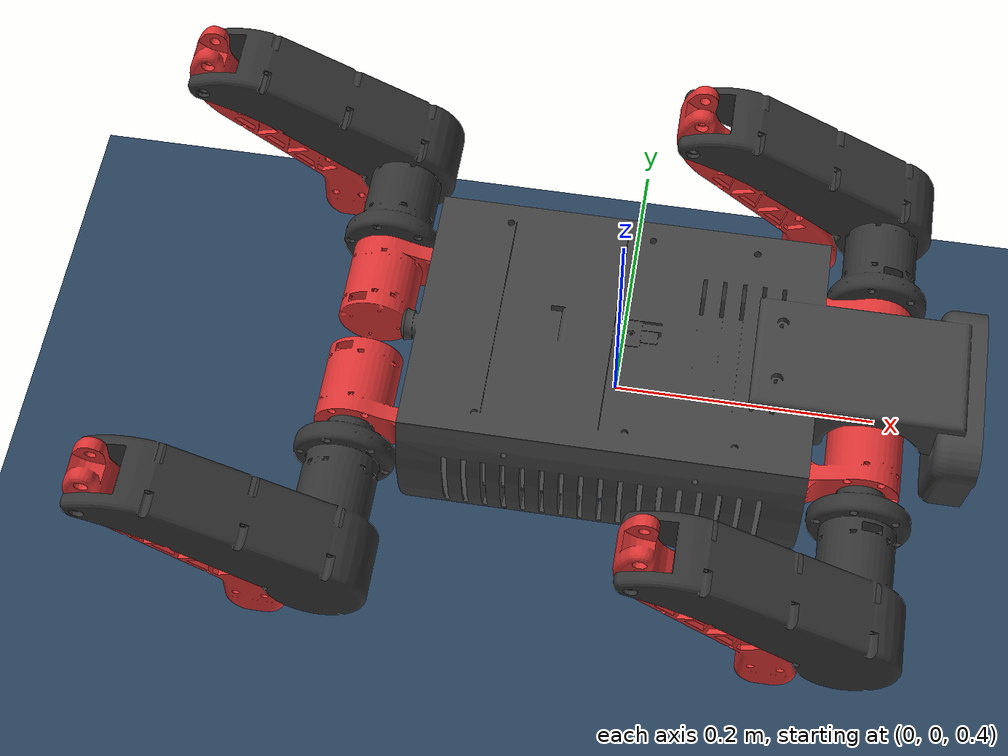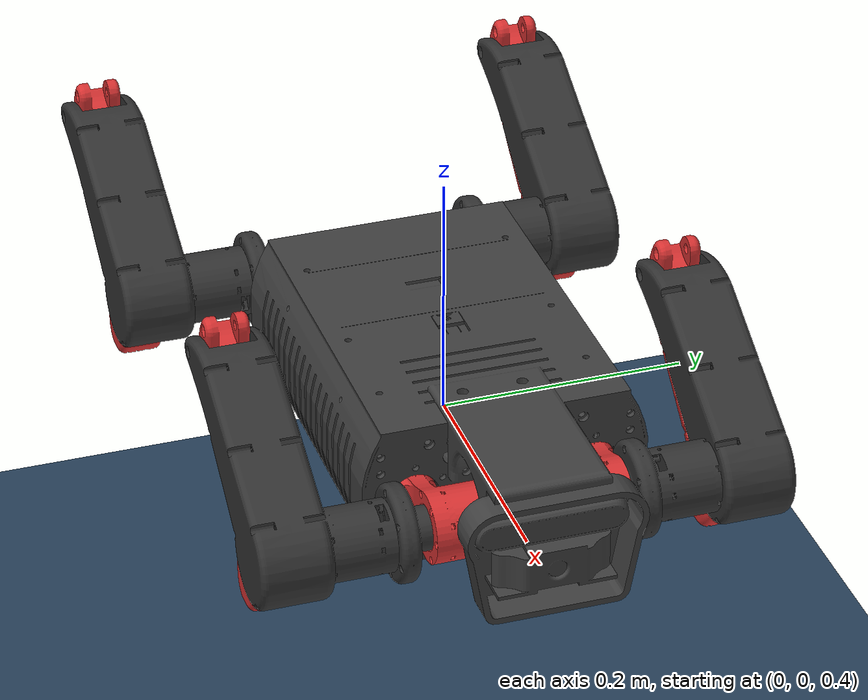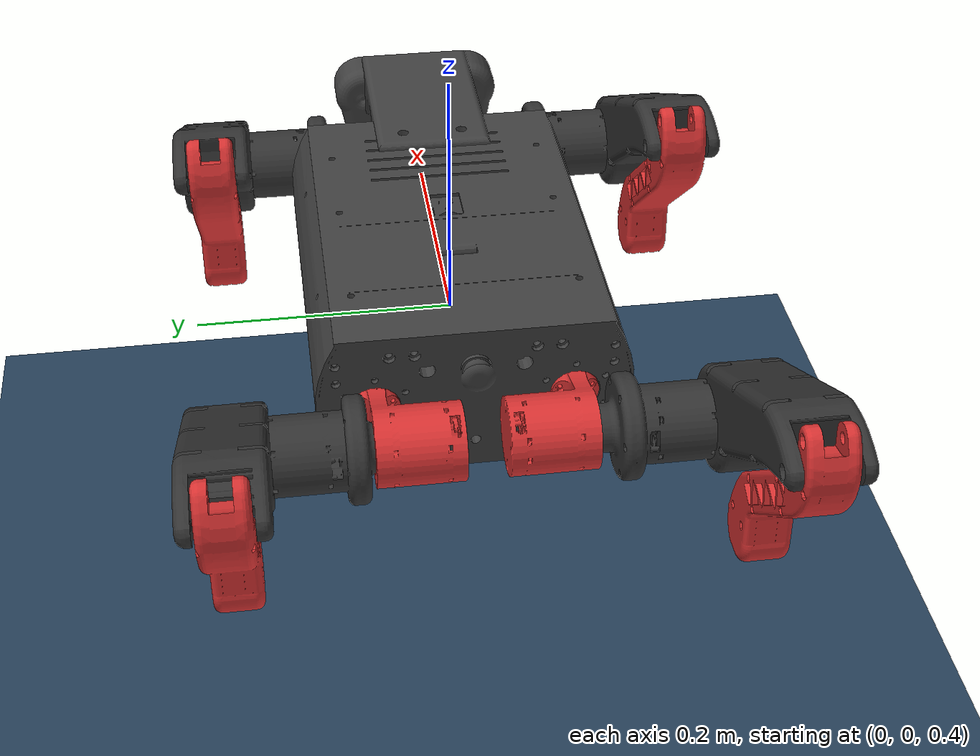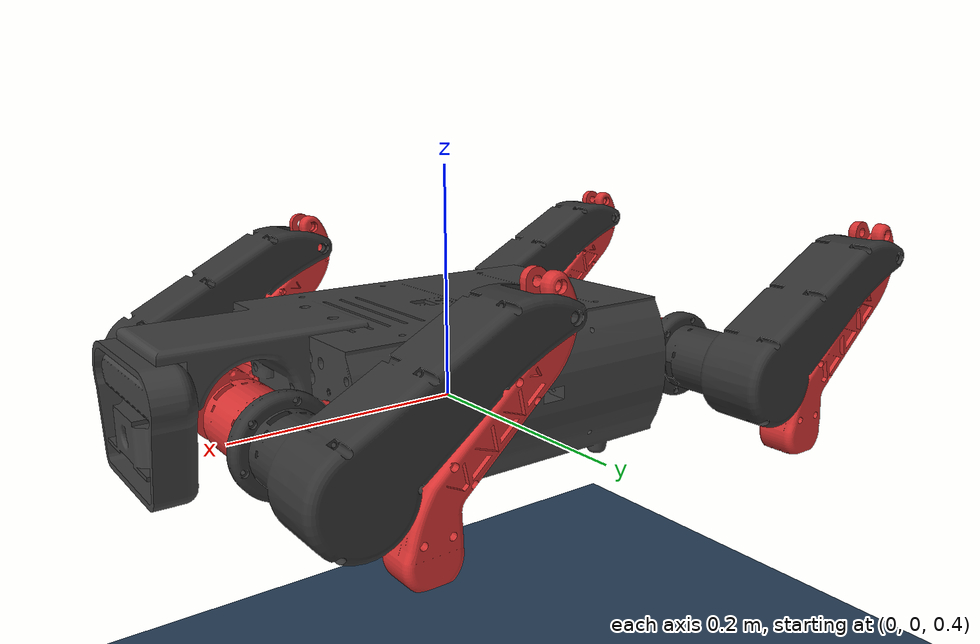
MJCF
<mujoco model="nxp_jaguar_scene">
  <option timestep="0.002" iterations="10" solver="Newton" gravity="0 0 -9.81"/>

  <visual>
    <headlight diffuse="0.6 0.6 0.6" ambient="0.3 0.3 0.3" specular="0 0 0"/>
    <rgba haze="0.15 0.25 0.35 1"/>
    <global azimuth="120" elevation="-20"/>
  </visual>

  <asset>
    <texture type="skybox" builtin="gradient" rgb1="0.3 0.5 0.7" rgb2="0 0 0" width="512" height="3072"/>
    <texture type="2d" name="groundplane" builtin="checker" mark="edge" rgb1="0.2 0.3 0.4" rgb2="0.1 0.2 0.3" markrgb="0.8 0.8 0.8" width="300" height="300"/>
    <material name="groundplane" texture="groundplane" texuniform="true" texrepeat="5 5" reflectance="0.2"/>
  </asset>

  <worldbody>
    <light pos="0 0 2.5" dir="0 0 -1" directional="true"/>
    <geom name="floor" pos="0 0 0.0" size="0 0 0.05" type="plane" material="groundplane" friction="1.0 0.05 0.05"/>
  </worldbody>

  <include file="nxp_jaguar.xml"/>
</mujoco>

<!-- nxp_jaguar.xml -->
<mujoco model="NXP_Jaguar">
  <compiler angle="radian" meshdir="../../models/meshes"/>

  <asset>
    <mesh name="Base_body" file="Base_body.STL"/>
    <mesh name="Fr_coxa_roll" file="Fr_coxa_roll.STL"/>
    <mesh name="Fr_hip_pitch" file="Fr_hip_pitch.STL"/>
    <mesh name="Fr_tibia_pitch" file="Fr_tibia_pitch.STL"/>
    <mesh name="Fl_coxa_roll" file="Fl_coxa_roll.STL"/>
    <mesh name="Fl_hip_pitch" file="Fl_hip_pitch.STL"/>
    <mesh name="Fl_tibia_pitch" file="Fl_tibia_pitch.STL"/>
    <mesh name="Br_coxa_roll" file="Br_coxa_roll.STL"/>
    <mesh name="Br_hip_pitch" file="Br_hip_pitch.STL"/>
    <mesh name="Br_tibia_pitch" file="Br_tibia_pitch.STL"/>
    <mesh name="Bl_coxa_roll" file="Bl_coxa_roll.STL"/>
    <mesh name="Bl_hip_pitch" file="Bl_hip_pitch.STL"/>
    <mesh name="Bl_tibia_pitch" file="Bl_tibia_pitch.STL"/>
  </asset>

  <default>
    <joint limited="true" armature="0.005" damping="0.0" frictionloss="0.0"/>
    <geom contype="1" conaffinity="1" condim="3" friction="1.0 0.05 0.05"/>
  </default>

  <worldbody>
    <body name="base_link" pos="0 0 0.35">
      <freejoint name="base_joint"/>
      <inertial pos="0.055662 0.002236 0.087783" mass="5.2" diaginertia="0.033984 0.101093 0.117161"/>
      <geom type="mesh" rgba="0.25 0.25 0.25 1" mesh="Base_body"/>
      <site name="imu_site" pos="0 0 0.08"/>

      <!-- Front-Right (FR) Leg -->
      <body name="Fr_coxa_link" pos="0.14 -0.0722 0.0755">
        <inertial pos="-0.04075 -0.01975 0" quat="0 0.707107 0 0.707107" mass="0.353" diaginertia="0.000359 0.000291 0.000259"/>
        <joint name="Fr_roll_joint" pos="0 0 0" axis="1 0 0" range="-0.4 0.4" actuatorfrcrange="-17 17"/>
        <geom type="mesh" rgba="0.85 0.2 0.2 1" mesh="Fr_coxa_roll"/>
        <body name="Fr_thigh_link" pos="0.053 -0.005 0">
          <inertial pos="-0.035579 -0.089273 0.026371" quat="0 0.886328 0 0.463058" mass="0.65" diaginertia="0.00349229 0.002555 0.00139771"/>
          <joint name="Fr_hip_pitch_joint" pos="0 0 0" axis="0 1 0" range="-3.14 3.14" actuatorfrcrange="-17 17"/>
          <geom type="mesh" rgba="0.2 0.2 0.2 1" mesh="Fr_hip_pitch"/>
          <body name="Fr_tibia_link" pos="-0.157 -0.0935 0.088">
            <inertial pos="0.060866 -0.017421 -0.080173" quat="0.666658 -0.235727 -0.235727 0.666658" mass="0.18" diaginertia="0.000726 0.000718529 4.14708e-05"/>
            <joint name="Fr_knee_joint" pos="0 0 0" axis="0 1 0" range="-0.1 2.8" actuatorfrcrange="-17 17"/>
            <geom type="mesh" rgba="0.85 0.2 0.2 1" mesh="Fr_tibia_pitch" friction="1.2 0.05 0.05"/>
          </body>
        </body>
      </body>

      <!-- Front-Left (FL) Leg -->
      <body name="Fl_coxa_link" pos="0.14 0.0722 0.0755">
        <inertial pos="-0.04075 -0.01975 0" quat="0 0.707107 0 0.707107" mass="0.353" diaginertia="0.000309 0.000275 0.0002"/>
        <joint name="Fl_roll_joint" pos="0 0 0" axis="1 0 0" range="-0.4 0.4" actuatorfrcrange="-17 17"/>
        <geom type="mesh" rgba="0.85 0.2 0.2 1" mesh="Fl_coxa_roll"/>
        <body name="Fl_thigh_link" pos="0.053 -0.005 0">
          <inertial pos="-0.035334 0.08886 0.026193" quat="0 0.886484 0 0.46276" mass="0.65" diaginertia="0.00347027 0.002547 0.00137673"/>
          <joint name="Fl_hip_pitch_joint" pos="0 0 0" axis="0 1 0" range="-3.14 3.14" actuatorfrcrange="-17 17"/>
          <geom type="mesh" rgba="0.2 0.2 0.2 1" mesh="Fl_hip_pitch"/>
          <body name="Fl_tibia_link" pos="-0.157 0.0935 0.088">
            <inertial pos="0.060954 0.017516 -0.080316" quat="0.666573 -0.235968 -0.235968 0.666573" mass="0.18" diaginertia="0.000726 0.000717925 4.10753e-05"/>
            <joint name="Fl_knee_joint" pos="0 0 0" axis="0 1 0" range="-0.1 2.8" actuatorfrcrange="-17 17"/>
            <geom type="mesh" rgba="0.85 0.2 0.2 1" mesh="Fl_tibia_pitch" friction="1.2 0.05 0.05"/>
          </body>
        </body>
      </body>

      <!-- Back-Right (BR) Leg -->
      <body name="Br_coxa_link" pos="-0.14 -0.0722 0.0755">
        <inertial pos="-0.04248 0.013241 -7.9e-05" quat="0 0.707107 0 0.707107" mass="0.353" diaginertia="0.000311 0.000302 0.000175"/>
        <joint name="Br_roll_joint" pos="0 0 0" axis="1 0 0" range="-0.4 0.4" actuatorfrcrange="-17 17"/>
        <geom type="mesh" rgba="0.85 0.2 0.2 1" mesh="Br_coxa_roll"/>
        <body name="Br_thigh_link" pos="-0.053 -0.005 0">
          <inertial pos="-0.035579 -0.089273 0.026371" quat="0 0.886291 0 0.463128" mass="0.65" diaginertia="0.00347458 0.002545 0.00139042"/>
          <joint name="Br_hip_pitch_joint" pos="0 0 0" axis="0 1 0" range="-3.14 3.14" actuatorfrcrange="-17 17"/>
          <geom type="mesh" rgba="0.2 0.2 0.2 1" mesh="Br_hip_pitch"/>
          <body name="Br_tibia_link" pos="-0.157 -0.0935 0.088">
            <inertial pos="0.060866 -0.017421 -0.080173" quat="0.666658 -0.235727 -0.235727 0.666658" mass="0.18" diaginertia="0.000726 0.000718529 4.14708e-05"/>
            <joint name="Br_knee_joint" pos="0 0 0" axis="0 1 0" range="-0.1 2.8" actuatorfrcrange="-17 17"/>
            <geom type="mesh" rgba="0.85 0.2 0.2 1" mesh="Br_tibia_pitch" friction="1.2 0.05 0.05"/>
          </body>
        </body>
      </body>

      <!-- Back-Left (BL) Leg -->
      <body name="Bl_coxa_link" pos="-0.14 0.0722 0.0755">
        <inertial pos="-0.042207 -0.013241 7.9e-05" quat="0 0.707107 0 0.707107" mass="0.353" diaginertia="0.000309 0.000275 0.0002"/>
        <joint name="Bl_roll_joint" pos="0 0 0" axis="1 0 0" range="-0.4 0.4" actuatorfrcrange="-17 17"/>
        <geom type="mesh" rgba="0.85 0.2 0.2 1" mesh="Bl_coxa_roll"/>
        <body name="Bl_thigh_link" pos="-0.053 -0.005 0">
          <inertial pos="-0.035334 0.08886 0.026193" quat="0 0.886484 0 0.46276" mass="0.65" diaginertia="0.00347027 0.002547 0.00137673"/>
          <joint name="Bl_hip_pitch_joint" pos="0 0 0" axis="0 1 0" range="-3.14 3.14" actuatorfrcrange="-17 17"/>
          <geom type="mesh" rgba="0.2 0.2 0.2 1" mesh="Bl_hip_pitch"/>
          <body name="Bl_tibia_link" pos="-0.157 0.0935 0.088">
            <inertial pos="0.060954 0.017516 -0.080316" quat="0.666573 -0.235968 -0.235968 0.666573" mass="0.18" diaginertia="0.000726 0.000717925 4.10753e-05"/>
            <joint name="Bl_knee_joint" pos="0 0 0" axis="0 1 0" range="-0.1 2.8" actuatorfrcrange="-17 17"/>
            <geom type="mesh" rgba="0.85 0.2 0.2 1" mesh="Bl_tibia_pitch" friction="1.2 0.05 0.05"/>
          </body>
        </body>
      </body>

    </body>
  </worldbody>

  <actuator>
    <motor name="Fr_roll_joint" joint="Fr_roll_joint" ctrlrange="-17 17"/>
    <motor name="Fr_hip_pitch_joint" joint="Fr_hip_pitch_joint" ctrlrange="-17 17"/>
    <motor name="Fr_knee_joint" joint="Fr_knee_joint" ctrlrange="-17 17"/>
    <motor name="Fl_roll_joint" joint="Fl_roll_joint" ctrlrange="-17 17"/>
    <motor name="Fl_hip_pitch_joint" joint="Fl_hip_pitch_joint" ctrlrange="-17 17"/>
    <motor name="Fl_knee_joint" joint="Fl_knee_joint" ctrlrange="-17 17"/>
    <motor name="Br_roll_joint" joint="Br_roll_joint" ctrlrange="-17 17"/>
    <motor name="Br_hip_pitch_joint" joint="Br_hip_pitch_joint" ctrlrange="-17 17"/>
    <motor name="Br_knee_joint" joint="Br_knee_joint" ctrlrange="-17 17"/>
    <motor name="Bl_roll_joint" joint="Bl_roll_joint" ctrlrange="-17 17"/>
    <motor name="Bl_hip_pitch_joint" joint="Bl_hip_pitch_joint" ctrlrange="-17 17"/>
    <motor name="Bl_knee_joint" joint="Bl_knee_joint" ctrlrange="-17 17"/>
  </actuator>

  <sensor>
    <gyro name="body_gyro" site="imu_site"/>
    <accelerometer name="body_acc" site="imu_site"/>
    <framequat name="body_quat" objtype="site" objname="imu_site"/>
    <framelinvel name="body_vel" objtype="site" objname="imu_site"/>
  </sensor>
</mujoco>
